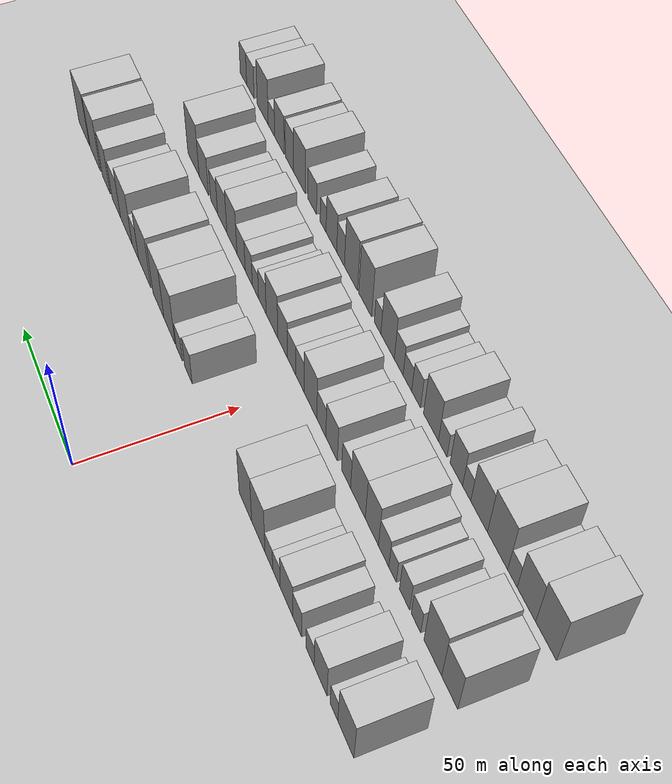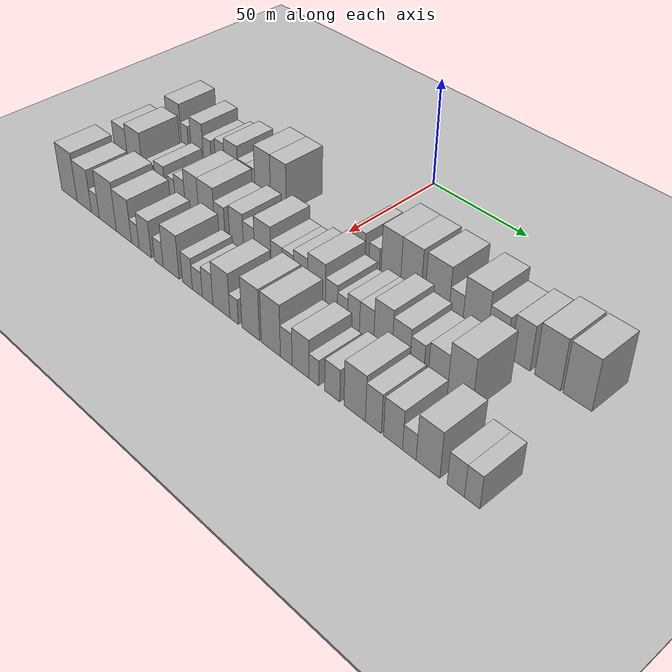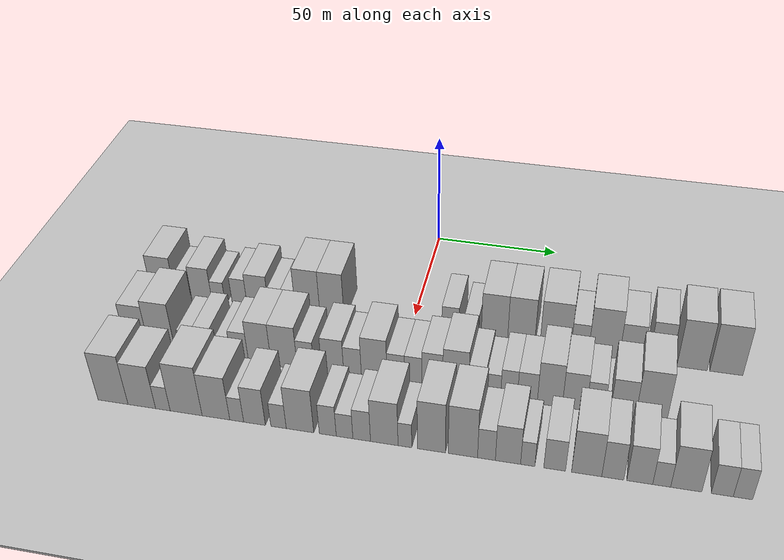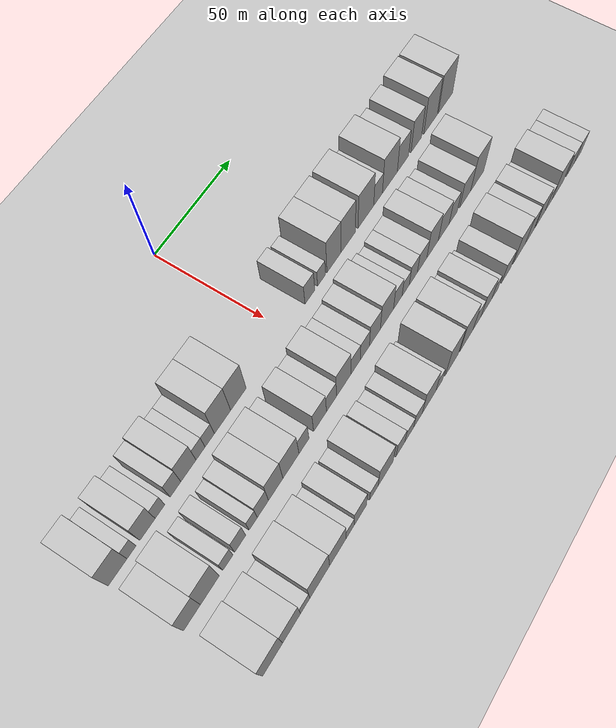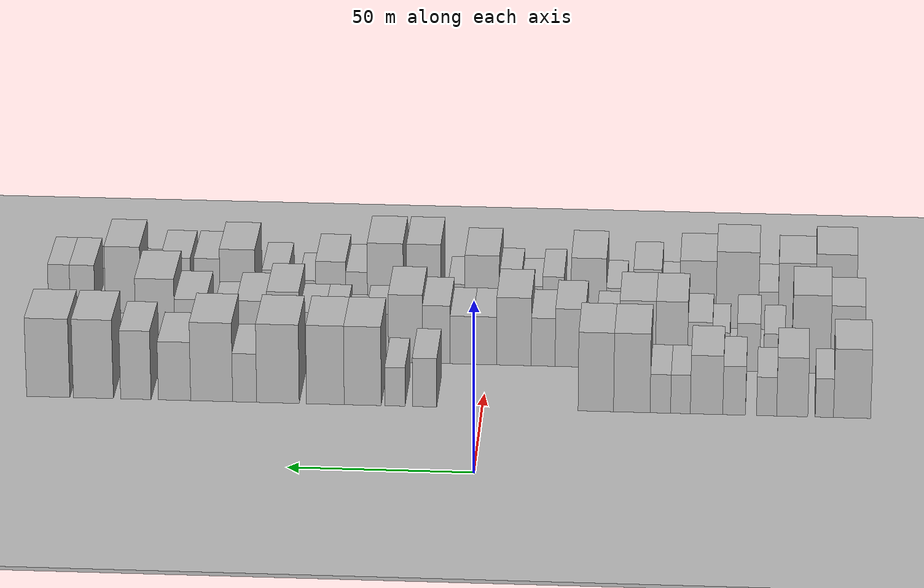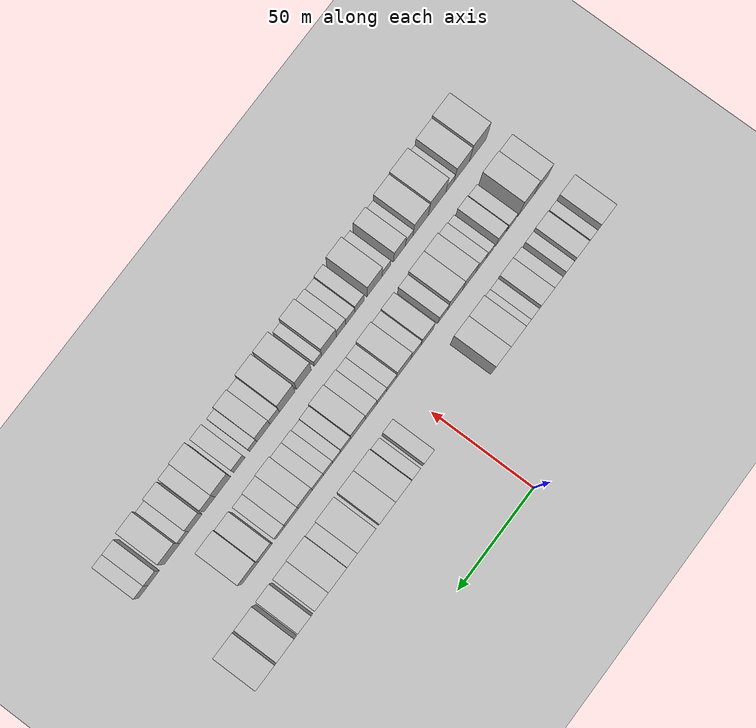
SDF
<sdf version="1.6">
 <world name="default">
  <include><name>ground_plane_1</name><uri>model://HANNAS_ground_plane</uri></include>
  <include>
   <name>ground_plane_2</name>
   <uri>model://HANNAS_ground_plane</uri>
   <pose>100 0 0  0 0 0</pose>
  </include>
  <model name="building_28">
   <static>1</static>
   <pose>50.0000 -100.8549 0 0.000000 0.000000 0.000000</pose>
   <link name="link">
    <pose>0 0 10.50 0 0 0</pose>
    <collision name="collision"><geometry><box><size>20.0000 10.1035 21.0000</size></box></geometry></collision>
    <visual name="visual">
     <cast_shadows>0</cast_shadows>
     <geometry><box><size>20.0000 10.1035 21.0000</size></box></geometry>
     <material>
      <script>
       <uri>model://HANNAS_wall/materials/scripts</uri>
       <uri>model://HANNAS_wall/materials/textures</uri>
       <name>vrc/HANNAS_wall</name>
      </script>
     </material>
    </visual>
   </link>
  </model>
  <model name="building_29">
   <static>1</static>
   <pose>50.0000 -93.3208 0 0.000000 0.000000 0.000000</pose>
   <link name="link">
    <pose>0 0 6.00 0 0 0</pose>
    <collision name="collision"><geometry><box><size>20.0000 4.9647 12.0000</size></box></geometry></collision>
    <visual name="visual">
     <cast_shadows>0</cast_shadows>
     <geometry><box><size>20.0000 4.9647 12.0000</size></box></geometry>
     <material>
      <script>
       <uri>model://HANNAS_wall/materials/scripts</uri>
       <uri>model://HANNAS_wall/materials/textures</uri>
       <name>vrc/HANNAS_wall</name>
      </script>
     </material>
    </visual>
   </link>
  </model>
  <model name="building_30">
   <static>1</static>
   <pose>50.0000 -84.5850 0 0.000000 0.000000 0.000000</pose>
   <link name="link">
    <pose>0 0 9.00 0 0 0</pose>
    <collision name="collision"><geometry><box><size>20.0000 8.5069 18.0000</size></box></geometry></collision>
    <visual name="visual">
     <cast_shadows>0</cast_shadows>
     <geometry><box><size>20.0000 8.5069 18.0000</size></box></geometry>
     <material>
      <script>
       <uri>model://HANNAS_wall/materials/scripts</uri>
       <uri>model://HANNAS_wall/materials/textures</uri>
       <name>vrc/HANNAS_wall</name>
      </script>
     </material>
    </visual>
   </link>
  </model>
  <model name="building_31">
   <static>1</static>
   <pose>50.0000 -77.5886 0 0.000000 0.000000 0.000000</pose>
   <link name="link">
    <pose>0 0 6.00 0 0 0</pose>
    <collision name="collision"><geometry><box><size>20.0000 5.4859 12.0000</size></box></geometry></collision>
    <visual name="visual">
     <cast_shadows>0</cast_shadows>
     <geometry><box><size>20.0000 5.4859 12.0000</size></box></geometry>
     <material>
      <script>
       <uri>model://HANNAS_wall/materials/scripts</uri>
       <uri>model://HANNAS_wall/materials/textures</uri>
       <name>vrc/HANNAS_wall</name>
      </script>
     </material>
    </visual>
   </link>
  </model>
  <model name="building_32">
   <static>1</static>
   <pose>50.0000 -68.7563 0 0.000000 0.000000 0.000000</pose>
   <link name="link">
    <pose>0 0 7.50 0 0 0</pose>
    <collision name="collision"><geometry><box><size>20.0000 6.1787 15.0000</size></box></geometry></collision>
    <visual name="visual">
     <cast_shadows>0</cast_shadows>
     <geometry><box><size>20.0000 6.1787 15.0000</size></box></geometry>
     <material>
      <script>
       <uri>model://HANNAS_wall/materials/scripts</uri>
       <uri>model://HANNAS_wall/materials/textures</uri>
       <name>vrc/HANNAS_wall</name>
      </script>
     </material>
    </visual>
   </link>
  </model>
  <model name="building_33">
   <static>1</static>
   <pose>50.0000 -61.2406 0 0.000000 0.000000 0.000000</pose>
   <link name="link">
    <pose>0 0 9.00 0 0 0</pose>
    <collision name="collision"><geometry><box><size>20.0000 8.8527 18.0000</size></box></geometry></collision>
    <visual name="visual">
     <cast_shadows>0</cast_shadows>
     <geometry><box><size>20.0000 8.8527 18.0000</size></box></geometry>
     <material>
      <script>
       <uri>model://HANNAS_wall/materials/scripts</uri>
       <uri>model://HANNAS_wall/materials/textures</uri>
       <name>vrc/HANNAS_wall</name>
      </script>
     </material>
    </visual>
   </link>
  </model>
  <model name="building_34">
   <static>1</static>
   <pose>50.0000 -54.1243 0 0.000000 0.000000 0.000000</pose>
   <link name="link">
    <pose>0 0 6.00 0 0 0</pose>
    <collision name="collision"><geometry><box><size>20.0000 5.3798 12.0000</size></box></geometry></collision>
    <visual name="visual">
     <cast_shadows>0</cast_shadows>
     <geometry><box><size>20.0000 5.3798 12.0000</size></box></geometry>
     <material>
      <script>
       <uri>model://HANNAS_wall/materials/scripts</uri>
       <uri>model://HANNAS_wall/materials/textures</uri>
       <name>vrc/HANNAS_wall</name>
      </script>
     </material>
    </visual>
   </link>
  </model>
  <model name="building_35">
   <static>1</static>
   <pose>50.0000 -48.6265 0 0.000000 0.000000 0.000000</pose>
   <link name="link">
    <pose>0 0 6.00 0 0 0</pose>
    <collision name="collision"><geometry><box><size>20.0000 5.6158 12.0000</size></box></geometry></collision>
    <visual name="visual">
     <cast_shadows>0</cast_shadows>
     <geometry><box><size>20.0000 5.6158 12.0000</size></box></geometry>
     <material>
      <script>
       <uri>model://HANNAS_wall/materials/scripts</uri>
       <uri>model://HANNAS_wall/materials/textures</uri>
       <name>vrc/HANNAS_wall</name>
      </script>
     </material>
    </visual>
   </link>
  </model>
  <model name="building_36">
   <static>1</static>
   <pose>50.0000 -40.8374 0 0.000000 0.000000 0.000000</pose>
   <link name="link">
    <pose>0 0 12.00 0 0 0</pose>
    <collision name="collision"><geometry><box><size>20.0000 9.9623 24.0000</size></box></geometry></collision>
    <visual name="visual">
     <cast_shadows>0</cast_shadows>
     <geometry><box><size>20.0000 9.9623 24.0000</size></box></geometry>
     <material>
      <script>
       <uri>model://HANNAS_wall/materials/scripts</uri>
       <uri>model://HANNAS_wall/materials/textures</uri>
       <name>vrc/HANNAS_wall</name>
      </script>
     </material>
    </visual>
   </link>
  </model>
  <model name="building_37">
   <static>1</static>
   <pose>50.0000 -31.0050 0 0.000000 0.000000 0.000000</pose>
   <link name="link">
    <pose>0 0 12.00 0 0 0</pose>
    <collision name="collision"><geometry><box><size>20.0000 9.7026 24.0000</size></box></geometry></collision>
    <visual name="visual">
     <cast_shadows>0</cast_shadows>
     <geometry><box><size>20.0000 9.7026 24.0000</size></box></geometry>
     <material>
      <script>
       <uri>model://HANNAS_wall/materials/scripts</uri>
       <uri>model://HANNAS_wall/materials/textures</uri>
       <name>vrc/HANNAS_wall</name>
      </script>
     </material>
    </visual>
   </link>
  </model>
  <model name="building_38">
   <static>1</static>
   <pose>50.0000 15.8936 0 0.000000 0.000000 0.000000</pose>
   <link name="link">
    <pose>0 0 7.50 0 0 0</pose>
    <collision name="collision"><geometry><box><size>20.0000 6.6982 15.0000</size></box></geometry></collision>
    <visual name="visual">
     <cast_shadows>0</cast_shadows>
     <geometry><box><size>20.0000 6.6982 15.0000</size></box></geometry>
     <material>
      <script>
       <uri>model://HANNAS_wall/materials/scripts</uri>
       <uri>model://HANNAS_wall/materials/textures</uri>
       <name>vrc/HANNAS_wall</name>
      </script>
     </material>
    </visual>
   </link>
  </model>
  <model name="building_39">
   <static>1</static>
   <pose>50.0000 24.0264 0 0.000000 0.000000 0.000000</pose>
   <link name="link">
    <pose>0 0 6.00 0 0 0</pose>
    <collision name="collision"><geometry><box><size>20.0000 5.5673 12.0000</size></box></geometry></collision>
    <visual name="visual">
     <cast_shadows>0</cast_shadows>
     <geometry><box><size>20.0000 5.5673 12.0000</size></box></geometry>
     <material>
      <script>
       <uri>model://HANNAS_wall/materials/scripts</uri>
       <uri>model://HANNAS_wall/materials/textures</uri>
       <name>vrc/HANNAS_wall</name>
      </script>
     </material>
    </visual>
   </link>
  </model>
  <model name="building_40">
   <static>1</static>
   <pose>50.0000 32.8881 0 0.000000 0.000000 0.000000</pose>
   <link name="link">
    <pose>0 0 12.00 0 0 0</pose>
    <collision name="collision"><geometry><box><size>20.0000 10.1561 24.0000</size></box></geometry></collision>
    <visual name="visual">
     <cast_shadows>0</cast_shadows>
     <geometry><box><size>20.0000 10.1561 24.0000</size></box></geometry>
     <material>
      <script>
       <uri>model://HANNAS_wall/materials/scripts</uri>
       <uri>model://HANNAS_wall/materials/textures</uri>
       <name>vrc/HANNAS_wall</name>
      </script>
     </material>
    </visual>
   </link>
  </model>
  <model name="building_41">
   <static>1</static>
   <pose>50.0000 43.1462 0 0.000000 0.000000 0.000000</pose>
   <link name="link">
    <pose>0 0 12.00 0 0 0</pose>
    <collision name="collision"><geometry><box><size>20.0000 10.3601 24.0000</size></box></geometry></collision>
    <visual name="visual">
     <cast_shadows>0</cast_shadows>
     <geometry><box><size>20.0000 10.3601 24.0000</size></box></geometry>
     <material>
      <script>
       <uri>model://HANNAS_wall/materials/scripts</uri>
       <uri>model://HANNAS_wall/materials/textures</uri>
       <name>vrc/HANNAS_wall</name>
      </script>
     </material>
    </visual>
   </link>
  </model>
  <model name="building_42">
   <static>1</static>
   <pose>50.0000 56.1803 0 0.000000 0.000000 0.000000</pose>
   <link name="link">
    <pose>0 0 12.00 0 0 0</pose>
    <collision name="collision"><geometry><box><size>20.0000 11.7080 24.0000</size></box></geometry></collision>
    <visual name="visual">
     <cast_shadows>0</cast_shadows>
     <geometry><box><size>20.0000 11.7080 24.0000</size></box></geometry>
     <material>
      <script>
       <uri>model://HANNAS_wall/materials/scripts</uri>
       <uri>model://HANNAS_wall/materials/textures</uri>
       <name>vrc/HANNAS_wall</name>
      </script>
     </material>
    </visual>
   </link>
  </model>
  <model name="building_43">
   <static>1</static>
   <pose>50.0000 65.3462 0 0.000000 0.000000 0.000000</pose>
   <link name="link">
    <pose>0 0 7.50 0 0 0</pose>
    <collision name="collision"><geometry><box><size>20.0000 6.6238 15.0000</size></box></geometry></collision>
    <visual name="visual">
     <cast_shadows>0</cast_shadows>
     <geometry><box><size>20.0000 6.6238 15.0000</size></box></geometry>
     <material>
      <script>
       <uri>model://HANNAS_wall/materials/scripts</uri>
       <uri>model://HANNAS_wall/materials/textures</uri>
       <name>vrc/HANNAS_wall</name>
      </script>
     </material>
    </visual>
   </link>
  </model>
  <model name="building_44">
   <static>1</static>
   <pose>50.0000 74.4359 0 0.000000 0.000000 0.000000</pose>
   <link name="link">
    <pose>0 0 12.00 0 0 0</pose>
    <collision name="collision"><geometry><box><size>20.0000 11.5555 24.0000</size></box></geometry></collision>
    <visual name="visual">
     <cast_shadows>0</cast_shadows>
     <geometry><box><size>20.0000 11.5555 24.0000</size></box></geometry>
     <material>
      <script>
       <uri>model://HANNAS_wall/materials/scripts</uri>
       <uri>model://HANNAS_wall/materials/textures</uri>
       <name>vrc/HANNAS_wall</name>
      </script>
     </material>
    </visual>
   </link>
  </model>
  <model name="building_45">
   <static>1</static>
   <pose>50.0000 84.6736 0 0.000000 0.000000 0.000000</pose>
   <link name="link">
    <pose>0 0 9.00 0 0 0</pose>
    <collision name="collision"><geometry><box><size>20.0000 8.9198 18.0000</size></box></geometry></collision>
    <visual name="visual">
     <cast_shadows>0</cast_shadows>
     <geometry><box><size>20.0000 8.9198 18.0000</size></box></geometry>
     <material>
      <script>
       <uri>model://HANNAS_wall/materials/scripts</uri>
       <uri>model://HANNAS_wall/materials/textures</uri>
       <name>vrc/HANNAS_wall</name>
      </script>
     </material>
    </visual>
   </link>
  </model>
  <model name="building_46">
   <static>1</static>
   <pose>50.0000 95.3387 0 0.000000 0.000000 0.000000</pose>
   <link name="link">
    <pose>0 0 10.50 0 0 0</pose>
    <collision name="collision"><geometry><box><size>20.0000 8.4104 21.0000</size></box></geometry></collision>
    <visual name="visual">
     <cast_shadows>0</cast_shadows>
     <geometry><box><size>20.0000 8.4104 21.0000</size></box></geometry>
     <material>
      <script>
       <uri>model://HANNAS_wall/materials/scripts</uri>
       <uri>model://HANNAS_wall/materials/textures</uri>
       <name>vrc/HANNAS_wall</name>
      </script>
     </material>
    </visual>
   </link>
  </model>
  <model name="building_47">
   <static>1</static>
   <pose>50.0000 107.0612 0 0.000000 0.000000 0.000000</pose>
   <link name="link">
    <pose>0 0 12.00 0 0 0</pose>
    <collision name="collision"><geometry><box><size>20.0000 11.0347 24.0000</size></box></geometry></collision>
    <visual name="visual">
     <cast_shadows>0</cast_shadows>
     <geometry><box><size>20.0000 11.0347 24.0000</size></box></geometry>
     <material>
      <script>
       <uri>model://HANNAS_wall/materials/scripts</uri>
       <uri>model://HANNAS_wall/materials/textures</uri>
       <name>vrc/HANNAS_wall</name>
      </script>
     </material>
    </visual>
   </link>
  </model>
  <model name="building_48">
   <static>1</static>
   <pose>50.0000 119.5464 0 0.000000 0.000000 0.000000</pose>
   <link name="link">
    <pose>0 0 12.00 0 0 0</pose>
    <collision name="collision"><geometry><box><size>20.0000 11.9357 24.0000</size></box></geometry></collision>
    <visual name="visual">
     <cast_shadows>0</cast_shadows>
     <geometry><box><size>20.0000 11.9357 24.0000</size></box></geometry>
     <material>
      <script>
       <uri>model://HANNAS_wall/materials/scripts</uri>
       <uri>model://HANNAS_wall/materials/textures</uri>
       <name>vrc/HANNAS_wall</name>
      </script>
     </material>
    </visual>
   </link>
  </model>
  <model name="building_97">
   <static>1</static>
   <pose>79.0000 -99.5963 0 0.000000 0.000000 0.000000</pose>
   <link name="link">
    <pose>0 0 10.50 0 0 0</pose>
    <collision name="collision"><geometry><box><size>20.0000 9.3835 21.0000</size></box></geometry></collision>
    <visual name="visual">
     <cast_shadows>0</cast_shadows>
     <geometry><box><size>20.0000 9.3835 21.0000</size></box></geometry>
     <material>
      <script>
       <uri>model://HANNAS_wall/materials/scripts</uri>
       <uri>model://HANNAS_wall/materials/textures</uri>
       <name>vrc/HANNAS_wall</name>
      </script>
     </material>
    </visual>
   </link>
  </model>
  <model name="building_98">
   <static>1</static>
   <pose>79.0000 -89.5971 0 0.000000 0.000000 0.000000</pose>
   <link name="link">
    <pose>0 0 12.00 0 0 0</pose>
    <collision name="collision"><geometry><box><size>20.0000 10.6150 24.0000</size></box></geometry></collision>
    <visual name="visual">
     <cast_shadows>0</cast_shadows>
     <geometry><box><size>20.0000 10.6150 24.0000</size></box></geometry>
     <material>
      <script>
       <uri>model://HANNAS_wall/materials/scripts</uri>
       <uri>model://HANNAS_wall/materials/textures</uri>
       <name>vrc/HANNAS_wall</name>
      </script>
     </material>
    </visual>
   </link>
  </model>
  <model name="building_99">
   <static>1</static>
   <pose>79.0000 -79.3667 0 0.000000 0.000000 0.000000</pose>
   <link name="link">
    <pose>0 0 6.00 0 0 0</pose>
    <collision name="collision"><geometry><box><size>20.0000 5.8457 12.0000</size></box></geometry></collision>
    <visual name="visual">
     <cast_shadows>0</cast_shadows>
     <geometry><box><size>20.0000 5.8457 12.0000</size></box></geometry>
     <material>
      <script>
       <uri>model://HANNAS_wall/materials/scripts</uri>
       <uri>model://HANNAS_wall/materials/textures</uri>
       <name>vrc/HANNAS_wall</name>
      </script>
     </material>
    </visual>
   </link>
  </model>
  <model name="building_100">
   <static>1</static>
   <pose>79.0000 -72.2043 0 0.000000 0.000000 0.000000</pose>
   <link name="link">
    <pose>0 0 7.50 0 0 0</pose>
    <collision name="collision"><geometry><box><size>20.0000 6.4791 15.0000</size></box></geometry></collision>
    <visual name="visual">
     <cast_shadows>0</cast_shadows>
     <geometry><box><size>20.0000 6.4791 15.0000</size></box></geometry>
     <material>
      <script>
       <uri>model://HANNAS_wall/materials/scripts</uri>
       <uri>model://HANNAS_wall/materials/textures</uri>
       <name>vrc/HANNAS_wall</name>
      </script>
     </material>
    </visual>
   </link>
  </model>
  <model name="building_101">
   <static>1</static>
   <pose>79.0000 -64.5507 0 0.000000 0.000000 0.000000</pose>
   <link name="link">
    <pose>0 0 6.00 0 0 0</pose>
    <collision name="collision"><geometry><box><size>20.0000 4.8282 12.0000</size></box></geometry></collision>
    <visual name="visual">
     <cast_shadows>0</cast_shadows>
     <geometry><box><size>20.0000 4.8282 12.0000</size></box></geometry>
     <material>
      <script>
       <uri>model://HANNAS_wall/materials/scripts</uri>
       <uri>model://HANNAS_wall/materials/textures</uri>
       <name>vrc/HANNAS_wall</name>
      </script>
     </material>
    </visual>
   </link>
  </model>
  <model name="building_102">
   <static>1</static>
   <pose>79.0000 -58.7323 0 0.000000 0.000000 0.000000</pose>
   <link name="link">
    <pose>0 0 7.50 0 0 0</pose>
    <collision name="collision"><geometry><box><size>20.0000 6.8086 15.0000</size></box></geometry></collision>
    <visual name="visual">
     <cast_shadows>0</cast_shadows>
     <geometry><box><size>20.0000 6.8086 15.0000</size></box></geometry>
     <material>
      <script>
       <uri>model://HANNAS_wall/materials/scripts</uri>
       <uri>model://HANNAS_wall/materials/textures</uri>
       <name>vrc/HANNAS_wall</name>
      </script>
     </material>
    </visual>
   </link>
  </model>
  <model name="building_103">
   <static>1</static>
   <pose>79.0000 -50.8927 0 0.000000 0.000000 0.000000</pose>
   <link name="link">
    <pose>0 0 10.50 0 0 0</pose>
    <collision name="collision"><geometry><box><size>20.0000 8.8706 21.0000</size></box></geometry></collision>
    <visual name="visual">
     <cast_shadows>0</cast_shadows>
     <geometry><box><size>20.0000 8.8706 21.0000</size></box></geometry>
     <material>
      <script>
       <uri>model://HANNAS_wall/materials/scripts</uri>
       <uri>model://HANNAS_wall/materials/textures</uri>
       <name>vrc/HANNAS_wall</name>
      </script>
     </material>
    </visual>
   </link>
  </model>
  <model name="building_104">
   <static>1</static>
   <pose>79.0000 -41.4099 0 0.000000 0.000000 0.000000</pose>
   <link name="link">
    <pose>0 0 10.50 0 0 0</pose>
    <collision name="collision"><geometry><box><size>20.0000 10.0950 21.0000</size></box></geometry></collision>
    <visual name="visual">
     <cast_shadows>0</cast_shadows>
     <geometry><box><size>20.0000 10.0950 21.0000</size></box></geometry>
     <material>
      <script>
       <uri>model://HANNAS_wall/materials/scripts</uri>
       <uri>model://HANNAS_wall/materials/textures</uri>
       <name>vrc/HANNAS_wall</name>
      </script>
     </material>
    </visual>
   </link>
  </model>
  <model name="building_105">
   <static>1</static>
   <pose>79.0000 -33.1680 0 0.000000 0.000000 0.000000</pose>
   <link name="link">
    <pose>0 0 7.50 0 0 0</pose>
    <collision name="collision"><geometry><box><size>20.0000 6.3888 15.0000</size></box></geometry></collision>
    <visual name="visual">
     <cast_shadows>0</cast_shadows>
     <geometry><box><size>20.0000 6.3888 15.0000</size></box></geometry>
     <material>
      <script>
       <uri>model://HANNAS_wall/materials/scripts</uri>
       <uri>model://HANNAS_wall/materials/textures</uri>
       <name>vrc/HANNAS_wall</name>
      </script>
     </material>
    </visual>
   </link>
  </model>
  <model name="building_106">
   <static>1</static>
   <pose>79.0000 -22.7790 0 0.000000 0.000000 0.000000</pose>
   <link name="link">
    <pose>0 0 9.00 0 0 0</pose>
    <collision name="collision"><geometry><box><size>20.0000 8.3892 18.0000</size></box></geometry></collision>
    <visual name="visual">
     <cast_shadows>0</cast_shadows>
     <geometry><box><size>20.0000 8.3892 18.0000</size></box></geometry>
     <material>
      <script>
       <uri>model://HANNAS_wall/materials/scripts</uri>
       <uri>model://HANNAS_wall/materials/textures</uri>
       <name>vrc/HANNAS_wall</name>
      </script>
     </material>
    </visual>
   </link>
  </model>
  <model name="building_107">
   <static>1</static>
   <pose>79.0000 -15.2485 0 0.000000 0.000000 0.000000</pose>
   <link name="link">
    <pose>0 0 7.50 0 0 0</pose>
    <collision name="collision"><geometry><box><size>20.0000 6.6717 15.0000</size></box></geometry></collision>
    <visual name="visual">
     <cast_shadows>0</cast_shadows>
     <geometry><box><size>20.0000 6.6717 15.0000</size></box></geometry>
     <material>
      <script>
       <uri>model://HANNAS_wall/materials/scripts</uri>
       <uri>model://HANNAS_wall/materials/textures</uri>
       <name>vrc/HANNAS_wall</name>
      </script>
     </material>
    </visual>
   </link>
  </model>
  <model name="building_108">
   <static>1</static>
   <pose>79.0000 -7.0770 0 0.000000 0.000000 0.000000</pose>
   <link name="link">
    <pose>0 0 10.50 0 0 0</pose>
    <collision name="collision"><geometry><box><size>20.0000 9.6714 21.0000</size></box></geometry></collision>
    <visual name="visual">
     <cast_shadows>0</cast_shadows>
     <geometry><box><size>20.0000 9.6714 21.0000</size></box></geometry>
     <material>
      <script>
       <uri>model://HANNAS_wall/materials/scripts</uri>
       <uri>model://HANNAS_wall/materials/textures</uri>
       <name>vrc/HANNAS_wall</name>
      </script>
     </material>
    </visual>
   </link>
  </model>
  <model name="building_109">
   <static>1</static>
   <pose>79.0000 1.0165 0 0.000000 0.000000 0.000000</pose>
   <link name="link">
    <pose>0 0 7.50 0 0 0</pose>
    <collision name="collision"><geometry><box><size>20.0000 6.5156 15.0000</size></box></geometry></collision>
    <visual name="visual">
     <cast_shadows>0</cast_shadows>
     <geometry><box><size>20.0000 6.5156 15.0000</size></box></geometry>
     <material>
      <script>
       <uri>model://HANNAS_wall/materials/scripts</uri>
       <uri>model://HANNAS_wall/materials/textures</uri>
       <name>vrc/HANNAS_wall</name>
      </script>
     </material>
    </visual>
   </link>
  </model>
  <model name="building_110">
   <static>1</static>
   <pose>79.0000 7.4887 0 0.000000 0.000000 0.000000</pose>
   <link name="link">
    <pose>0 0 7.50 0 0 0</pose>
    <collision name="collision"><geometry><box><size>20.0000 6.4288 15.0000</size></box></geometry></collision>
    <visual name="visual">
     <cast_shadows>0</cast_shadows>
     <geometry><box><size>20.0000 6.4288 15.0000</size></box></geometry>
     <material>
      <script>
       <uri>model://HANNAS_wall/materials/scripts</uri>
       <uri>model://HANNAS_wall/materials/textures</uri>
       <name>vrc/HANNAS_wall</name>
      </script>
     </material>
    </visual>
   </link>
  </model>
  <model name="building_111">
   <static>1</static>
   <pose>79.0000 14.5579 0 0.000000 0.000000 0.000000</pose>
   <link name="link">
    <pose>0 0 9.00 0 0 0</pose>
    <collision name="collision"><geometry><box><size>20.0000 7.7095 18.0000</size></box></geometry></collision>
    <visual name="visual">
     <cast_shadows>0</cast_shadows>
     <geometry><box><size>20.0000 7.7095 18.0000</size></box></geometry>
     <material>
      <script>
       <uri>model://HANNAS_wall/materials/scripts</uri>
       <uri>model://HANNAS_wall/materials/textures</uri>
       <name>vrc/HANNAS_wall</name>
      </script>
     </material>
    </visual>
   </link>
  </model>
  <model name="building_112">
   <static>1</static>
   <pose>79.0000 23.1753 0 0.000000 0.000000 0.000000</pose>
   <link name="link">
    <pose>0 0 10.50 0 0 0</pose>
    <collision name="collision"><geometry><box><size>20.0000 9.5252 21.0000</size></box></geometry></collision>
    <visual name="visual">
     <cast_shadows>0</cast_shadows>
     <geometry><box><size>20.0000 9.5252 21.0000</size></box></geometry>
     <material>
      <script>
       <uri>model://HANNAS_wall/materials/scripts</uri>
       <uri>model://HANNAS_wall/materials/textures</uri>
       <name>vrc/HANNAS_wall</name>
      </script>
     </material>
    </visual>
   </link>
  </model>
  <model name="building_113">
   <static>1</static>
   <pose>79.0000 31.0862 0 0.000000 0.000000 0.000000</pose>
   <link name="link">
    <pose>0 0 7.50 0 0 0</pose>
    <collision name="collision"><geometry><box><size>20.0000 6.2967 15.0000</size></box></geometry></collision>
    <visual name="visual">
     <cast_shadows>0</cast_shadows>
     <geometry><box><size>20.0000 6.2967 15.0000</size></box></geometry>
     <material>
      <script>
       <uri>model://HANNAS_wall/materials/scripts</uri>
       <uri>model://HANNAS_wall/materials/textures</uri>
       <name>vrc/HANNAS_wall</name>
      </script>
     </material>
    </visual>
   </link>
  </model>
  <model name="building_114">
   <static>1</static>
   <pose>79.0000 36.9077 0 0.000000 0.000000 0.000000</pose>
   <link name="link">
    <pose>0 0 6.00 0 0 0</pose>
    <collision name="collision"><geometry><box><size>20.0000 5.3462 12.0000</size></box></geometry></collision>
    <visual name="visual">
     <cast_shadows>0</cast_shadows>
     <geometry><box><size>20.0000 5.3462 12.0000</size></box></geometry>
     <material>
      <script>
       <uri>model://HANNAS_wall/materials/scripts</uri>
       <uri>model://HANNAS_wall/materials/textures</uri>
       <name>vrc/HANNAS_wall</name>
      </script>
     </material>
    </visual>
   </link>
  </model>
  <model name="building_115">
   <static>1</static>
   <pose>79.0000 42.6156 0 0.000000 0.000000 0.000000</pose>
   <link name="link">
    <pose>0 0 7.50 0 0 0</pose>
    <collision name="collision"><geometry><box><size>20.0000 6.0697 15.0000</size></box></geometry></collision>
    <visual name="visual">
     <cast_shadows>0</cast_shadows>
     <geometry><box><size>20.0000 6.0697 15.0000</size></box></geometry>
     <material>
      <script>
       <uri>model://HANNAS_wall/materials/scripts</uri>
       <uri>model://HANNAS_wall/materials/textures</uri>
       <name>vrc/HANNAS_wall</name>
      </script>
     </material>
    </visual>
   </link>
  </model>
  <model name="building_116">
   <static>1</static>
   <pose>79.0000 49.2344 0 0.000000 0.000000 0.000000</pose>
   <link name="link">
    <pose>0 0 7.50 0 0 0</pose>
    <collision name="collision"><geometry><box><size>20.0000 7.1678 15.0000</size></box></geometry></collision>
    <visual name="visual">
     <cast_shadows>0</cast_shadows>
     <geometry><box><size>20.0000 7.1678 15.0000</size></box></geometry>
     <material>
      <script>
       <uri>model://HANNAS_wall/materials/scripts</uri>
       <uri>model://HANNAS_wall/materials/textures</uri>
       <name>vrc/HANNAS_wall</name>
      </script>
     </material>
    </visual>
   </link>
  </model>
  <model name="building_117">
   <static>1</static>
   <pose>79.0000 57.3023 0 0.000000 0.000000 0.000000</pose>
   <link name="link">
    <pose>0 0 10.50 0 0 0</pose>
    <collision name="collision"><geometry><box><size>20.0000 8.9681 21.0000</size></box></geometry></collision>
    <visual name="visual">
     <cast_shadows>0</cast_shadows>
     <geometry><box><size>20.0000 8.9681 21.0000</size></box></geometry>
     <material>
      <script>
       <uri>model://HANNAS_wall/materials/scripts</uri>
       <uri>model://HANNAS_wall/materials/textures</uri>
       <name>vrc/HANNAS_wall</name>
      </script>
     </material>
    </visual>
   </link>
  </model>
  <model name="building_118">
   <static>1</static>
   <pose>79.0000 66.0440 0 0.000000 0.000000 0.000000</pose>
   <link name="link">
    <pose>0 0 9.00 0 0 0</pose>
    <collision name="collision"><geometry><box><size>20.0000 8.5152 18.0000</size></box></geometry></collision>
    <visual name="visual">
     <cast_shadows>0</cast_shadows>
     <geometry><box><size>20.0000 8.5152 18.0000</size></box></geometry>
     <material>
      <script>
       <uri>model://HANNAS_wall/materials/scripts</uri>
       <uri>model://HANNAS_wall/materials/textures</uri>
       <name>vrc/HANNAS_wall</name>
      </script>
     </material>
    </visual>
   </link>
  </model>
  <model name="building_119">
   <static>1</static>
   <pose>79.0000 73.5313 0 0.000000 0.000000 0.000000</pose>
   <link name="link">
    <pose>0 0 7.50 0 0 0</pose>
    <collision name="collision"><geometry><box><size>20.0000 6.4594 15.0000</size></box></geometry></collision>
    <visual name="visual">
     <cast_shadows>0</cast_shadows>
     <geometry><box><size>20.0000 6.4594 15.0000</size></box></geometry>
     <material>
      <script>
       <uri>model://HANNAS_wall/materials/scripts</uri>
       <uri>model://HANNAS_wall/materials/textures</uri>
       <name>vrc/HANNAS_wall</name>
      </script>
     </material>
    </visual>
   </link>
  </model>
  <model name="building_120">
   <static>1</static>
   <pose>79.0000 83.2062 0 0.000000 0.000000 0.000000</pose>
   <link name="link">
    <pose>0 0 9.00 0 0 0</pose>
    <collision name="collision"><geometry><box><size>20.0000 8.8904 18.0000</size></box></geometry></collision>
    <visual name="visual">
     <cast_shadows>0</cast_shadows>
     <geometry><box><size>20.0000 8.8904 18.0000</size></box></geometry>
     <material>
      <script>
       <uri>model://HANNAS_wall/materials/scripts</uri>
       <uri>model://HANNAS_wall/materials/textures</uri>
       <name>vrc/HANNAS_wall</name>
      </script>
     </material>
    </visual>
   </link>
  </model>
  <model name="building_121">
   <static>1</static>
   <pose>79.0000 93.1075 0 0.000000 0.000000 0.000000</pose>
   <link name="link">
    <pose>0 0 12.00 0 0 0</pose>
    <collision name="collision"><geometry><box><size>20.0000 10.9123 24.0000</size></box></geometry></collision>
    <visual name="visual">
     <cast_shadows>0</cast_shadows>
     <geometry><box><size>20.0000 10.9123 24.0000</size></box></geometry>
     <material>
      <script>
       <uri>model://HANNAS_wall/materials/scripts</uri>
       <uri>model://HANNAS_wall/materials/textures</uri>
       <name>vrc/HANNAS_wall</name>
      </script>
     </material>
    </visual>
   </link>
  </model>
  <model name="building_169">
   <static>1</static>
   <pose>108.0000 -96.4127 0 0.000000 0.000000 0.000000</pose>
   <link name="link">
    <pose>0 0 12.00 0 0 0</pose>
    <collision name="collision"><geometry><box><size>20.0000 11.4889 24.0000</size></box></geometry></collision>
    <visual name="visual">
     <cast_shadows>0</cast_shadows>
     <geometry><box><size>20.0000 11.4889 24.0000</size></box></geometry>
     <material>
      <script>
       <uri>model://HANNAS_wall/materials/scripts</uri>
       <uri>model://HANNAS_wall/materials/textures</uri>
       <name>vrc/HANNAS_wall</name>
      </script>
     </material>
    </visual>
   </link>
  </model>
  <model name="building_170">
   <static>1</static>
   <pose>108.0000 -85.4387 0 0.000000 0.000000 0.000000</pose>
   <link name="link">
    <pose>0 0 10.50 0 0 0</pose>
    <collision name="collision"><geometry><box><size>20.0000 10.4591 21.0000</size></box></geometry></collision>
    <visual name="visual">
     <cast_shadows>0</cast_shadows>
     <geometry><box><size>20.0000 10.4591 21.0000</size></box></geometry>
     <material>
      <script>
       <uri>model://HANNAS_wall/materials/scripts</uri>
       <uri>model://HANNAS_wall/materials/textures</uri>
       <name>vrc/HANNAS_wall</name>
      </script>
     </material>
    </visual>
   </link>
  </model>
  <model name="building_171">
   <static>1</static>
   <pose>108.0000 -77.4448 0 0.000000 0.000000 0.000000</pose>
   <link name="link">
    <pose>0 0 6.00 0 0 0</pose>
    <collision name="collision"><geometry><box><size>20.0000 5.5287 12.0000</size></box></geometry></collision>
    <visual name="visual">
     <cast_shadows>0</cast_shadows>
     <geometry><box><size>20.0000 5.5287 12.0000</size></box></geometry>
     <material>
      <script>
       <uri>model://HANNAS_wall/materials/scripts</uri>
       <uri>model://HANNAS_wall/materials/textures</uri>
       <name>vrc/HANNAS_wall</name>
      </script>
     </material>
    </visual>
   </link>
  </model>
  <model name="building_172">
   <static>1</static>
   <pose>108.0000 -68.6865 0 0.000000 0.000000 0.000000</pose>
   <link name="link">
    <pose>0 0 12.00 0 0 0</pose>
    <collision name="collision"><geometry><box><size>20.0000 11.9879 24.0000</size></box></geometry></collision>
    <visual name="visual">
     <cast_shadows>0</cast_shadows>
     <geometry><box><size>20.0000 11.9879 24.0000</size></box></geometry>
     <material>
      <script>
       <uri>model://HANNAS_wall/materials/scripts</uri>
       <uri>model://HANNAS_wall/materials/textures</uri>
       <name>vrc/HANNAS_wall</name>
      </script>
     </material>
    </visual>
   </link>
  </model>
  <model name="building_173">
   <static>1</static>
   <pose>108.0000 -57.5552 0 0.000000 0.000000 0.000000</pose>
   <link name="link">
    <pose>0 0 10.50 0 0 0</pose>
    <collision name="collision"><geometry><box><size>20.0000 10.2746 21.0000</size></box></geometry></collision>
    <visual name="visual">
     <cast_shadows>0</cast_shadows>
     <geometry><box><size>20.0000 10.2746 21.0000</size></box></geometry>
     <material>
      <script>
       <uri>model://HANNAS_wall/materials/scripts</uri>
       <uri>model://HANNAS_wall/materials/textures</uri>
       <name>vrc/HANNAS_wall</name>
      </script>
     </material>
    </visual>
   </link>
  </model>
  <model name="building_174">
   <static>1</static>
   <pose>108.0000 -49.8562 0 0.000000 0.000000 0.000000</pose>
   <link name="link">
    <pose>0 0 6.00 0 0 0</pose>
    <collision name="collision"><geometry><box><size>20.0000 5.1233 12.0000</size></box></geometry></collision>
    <visual name="visual">
     <cast_shadows>0</cast_shadows>
     <geometry><box><size>20.0000 5.1233 12.0000</size></box></geometry>
     <material>
      <script>
       <uri>model://HANNAS_wall/materials/scripts</uri>
       <uri>model://HANNAS_wall/materials/textures</uri>
       <name>vrc/HANNAS_wall</name>
      </script>
     </material>
    </visual>
   </link>
  </model>
  <model name="building_175">
   <static>1</static>
   <pose>108.0000 -43.3078 0 0.000000 0.000000 0.000000</pose>
   <link name="link">
    <pose>0 0 9.00 0 0 0</pose>
    <collision name="collision"><geometry><box><size>20.0000 7.9735 18.0000</size></box></geometry></collision>
    <visual name="visual">
     <cast_shadows>0</cast_shadows>
     <geometry><box><size>20.0000 7.9735 18.0000</size></box></geometry>
     <material>
      <script>
       <uri>model://HANNAS_wall/materials/scripts</uri>
       <uri>model://HANNAS_wall/materials/textures</uri>
       <name>vrc/HANNAS_wall</name>
      </script>
     </material>
    </visual>
   </link>
  </model>
  <model name="building_176">
   <static>1</static>
   <pose>108.0000 -34.5117 0 0.000000 0.000000 0.000000</pose>
   <link name="link">
    <pose>0 0 6.00 0 0 0</pose>
    <collision name="collision"><geometry><box><size>20.0000 5.6186 12.0000</size></box></geometry></collision>
    <visual name="visual">
     <cast_shadows>0</cast_shadows>
     <geometry><box><size>20.0000 5.6186 12.0000</size></box></geometry>
     <material>
      <script>
       <uri>model://HANNAS_wall/materials/scripts</uri>
       <uri>model://HANNAS_wall/materials/textures</uri>
       <name>vrc/HANNAS_wall</name>
      </script>
     </material>
    </visual>
   </link>
  </model>
  <model name="building_177">
   <static>1</static>
   <pose>108.0000 -26.7103 0 0.000000 0.000000 0.000000</pose>
   <link name="link">
    <pose>0 0 10.50 0 0 0</pose>
    <collision name="collision"><geometry><box><size>20.0000 9.9841 21.0000</size></box></geometry></collision>
    <visual name="visual">
     <cast_shadows>0</cast_shadows>
     <geometry><box><size>20.0000 9.9841 21.0000</size></box></geometry>
     <material>
      <script>
       <uri>model://HANNAS_wall/materials/scripts</uri>
       <uri>model://HANNAS_wall/materials/textures</uri>
       <name>vrc/HANNAS_wall</name>
      </script>
     </material>
    </visual>
   </link>
  </model>
  <model name="building_178">
   <static>1</static>
   <pose>108.0000 -16.6829 0 0.000000 0.000000 0.000000</pose>
   <link name="link">
    <pose>0 0 7.50 0 0 0</pose>
    <collision name="collision"><geometry><box><size>20.0000 6.0708 15.0000</size></box></geometry></collision>
    <visual name="visual">
     <cast_shadows>0</cast_shadows>
     <geometry><box><size>20.0000 6.0708 15.0000</size></box></geometry>
     <material>
      <script>
       <uri>model://HANNAS_wall/materials/scripts</uri>
       <uri>model://HANNAS_wall/materials/textures</uri>
       <name>vrc/HANNAS_wall</name>
      </script>
     </material>
    </visual>
   </link>
  </model>
  <model name="building_179">
   <static>1</static>
   <pose>108.0000 -10.6674 0 0.000000 0.000000 0.000000</pose>
   <link name="link">
    <pose>0 0 6.00 0 0 0</pose>
    <collision name="collision"><geometry><box><size>20.0000 5.9601 12.0000</size></box></geometry></collision>
    <visual name="visual">
     <cast_shadows>0</cast_shadows>
     <geometry><box><size>20.0000 5.9601 12.0000</size></box></geometry>
     <material>
      <script>
       <uri>model://HANNAS_wall/materials/scripts</uri>
       <uri>model://HANNAS_wall/materials/textures</uri>
       <name>vrc/HANNAS_wall</name>
      </script>
     </material>
    </visual>
   </link>
  </model>
  <model name="building_180">
   <static>1</static>
   <pose>108.0000 -4.5582 0 0.000000 0.000000 0.000000</pose>
   <link name="link">
    <pose>0 0 7.50 0 0 0</pose>
    <collision name="collision"><geometry><box><size>20.0000 6.2583 15.0000</size></box></geometry></collision>
    <visual name="visual">
     <cast_shadows>0</cast_shadows>
     <geometry><box><size>20.0000 6.2583 15.0000</size></box></geometry>
     <material>
      <script>
       <uri>model://HANNAS_wall/materials/scripts</uri>
       <uri>model://HANNAS_wall/materials/textures</uri>
       <name>vrc/HANNAS_wall</name>
      </script>
     </material>
    </visual>
   </link>
  </model>
  <model name="building_181">
   <static>1</static>
   <pose>108.0000 3.4399 0 0.000000 0.000000 0.000000</pose>
   <link name="link">
    <pose>0 0 10.50 0 0 0</pose>
    <collision name="collision"><geometry><box><size>20.0000 9.7378 21.0000</size></box></geometry></collision>
    <visual name="visual">
     <cast_shadows>0</cast_shadows>
     <geometry><box><size>20.0000 9.7378 21.0000</size></box></geometry>
     <material>
      <script>
       <uri>model://HANNAS_wall/materials/scripts</uri>
       <uri>model://HANNAS_wall/materials/textures</uri>
       <name>vrc/HANNAS_wall</name>
      </script>
     </material>
    </visual>
   </link>
  </model>
  <model name="building_182">
   <static>1</static>
   <pose>108.0000 10.7193 0 0.000000 0.000000 0.000000</pose>
   <link name="link">
    <pose>0 0 6.00 0 0 0</pose>
    <collision name="collision"><geometry><box><size>20.0000 4.8211 12.0000</size></box></geometry></collision>
    <visual name="visual">
     <cast_shadows>0</cast_shadows>
     <geometry><box><size>20.0000 4.8211 12.0000</size></box></geometry>
     <material>
      <script>
       <uri>model://HANNAS_wall/materials/scripts</uri>
       <uri>model://HANNAS_wall/materials/textures</uri>
       <name>vrc/HANNAS_wall</name>
      </script>
     </material>
    </visual>
   </link>
  </model>
  <model name="building_183">
   <static>1</static>
   <pose>108.0000 19.9782 0 0.000000 0.000000 0.000000</pose>
   <link name="link">
    <pose>0 0 12.00 0 0 0</pose>
    <collision name="collision"><geometry><box><size>20.0000 9.6968 24.0000</size></box></geometry></collision>
    <visual name="visual">
     <cast_shadows>0</cast_shadows>
     <geometry><box><size>20.0000 9.6968 24.0000</size></box></geometry>
     <material>
      <script>
       <uri>model://HANNAS_wall/materials/scripts</uri>
       <uri>model://HANNAS_wall/materials/textures</uri>
       <name>vrc/HANNAS_wall</name>
      </script>
     </material>
    </visual>
   </link>
  </model>
  <model name="building_184">
   <static>1</static>
   <pose>108.0000 30.8953 0 0.000000 0.000000 0.000000</pose>
   <link name="link">
    <pose>0 0 12.00 0 0 0</pose>
    <collision name="collision"><geometry><box><size>20.0000 10.1373 24.0000</size></box></geometry></collision>
    <visual name="visual">
     <cast_shadows>0</cast_shadows>
     <geometry><box><size>20.0000 10.1373 24.0000</size></box></geometry>
     <material>
      <script>
       <uri>model://HANNAS_wall/materials/scripts</uri>
       <uri>model://HANNAS_wall/materials/textures</uri>
       <name>vrc/HANNAS_wall</name>
      </script>
     </material>
    </visual>
   </link>
  </model>
  <model name="building_185">
   <static>1</static>
   <pose>108.0000 39.0214 0 0.000000 0.000000 0.000000</pose>
   <link name="link">
    <pose>0 0 7.50 0 0 0</pose>
    <collision name="collision"><geometry><box><size>20.0000 6.1149 15.0000</size></box></geometry></collision>
    <visual name="visual">
     <cast_shadows>0</cast_shadows>
     <geometry><box><size>20.0000 6.1149 15.0000</size></box></geometry>
     <material>
      <script>
       <uri>model://HANNAS_wall/materials/scripts</uri>
       <uri>model://HANNAS_wall/materials/textures</uri>
       <name>vrc/HANNAS_wall</name>
      </script>
     </material>
    </visual>
   </link>
  </model>
  <model name="building_186">
   <static>1</static>
   <pose>108.0000 46.3719 0 0.000000 0.000000 0.000000</pose>
   <link name="link">
    <pose>0 0 9.00 0 0 0</pose>
    <collision name="collision"><geometry><box><size>20.0000 8.5862 18.0000</size></box></geometry></collision>
    <visual name="visual">
     <cast_shadows>0</cast_shadows>
     <geometry><box><size>20.0000 8.5862 18.0000</size></box></geometry>
     <material>
      <script>
       <uri>model://HANNAS_wall/materials/scripts</uri>
       <uri>model://HANNAS_wall/materials/textures</uri>
       <name>vrc/HANNAS_wall</name>
      </script>
     </material>
    </visual>
   </link>
  </model>
  <model name="building_187">
   <static>1</static>
   <pose>108.0000 53.0840 0 0.000000 0.000000 0.000000</pose>
   <link name="link">
    <pose>0 0 6.00 0 0 0</pose>
    <collision name="collision"><geometry><box><size>20.0000 4.8378 12.0000</size></box></geometry></collision>
    <visual name="visual">
     <cast_shadows>0</cast_shadows>
     <geometry><box><size>20.0000 4.8378 12.0000</size></box></geometry>
     <material>
      <script>
       <uri>model://HANNAS_wall/materials/scripts</uri>
       <uri>model://HANNAS_wall/materials/textures</uri>
       <name>vrc/HANNAS_wall</name>
      </script>
     </material>
    </visual>
   </link>
  </model>
  <model name="building_188">
   <static>1</static>
   <pose>108.0000 62.1769 0 0.000000 0.000000 0.000000</pose>
   <link name="link">
    <pose>0 0 7.50 0 0 0</pose>
    <collision name="collision"><geometry><box><size>20.0000 7.3481 15.0000</size></box></geometry></collision>
    <visual name="visual">
     <cast_shadows>0</cast_shadows>
     <geometry><box><size>20.0000 7.3481 15.0000</size></box></geometry>
     <material>
      <script>
       <uri>model://HANNAS_wall/materials/scripts</uri>
       <uri>model://HANNAS_wall/materials/textures</uri>
       <name>vrc/HANNAS_wall</name>
      </script>
     </material>
    </visual>
   </link>
  </model>
  <model name="building_189">
   <static>1</static>
   <pose>108.0000 72.8818 0 0.000000 0.000000 0.000000</pose>
   <link name="link">
    <pose>0 0 10.50 0 0 0</pose>
    <collision name="collision"><geometry><box><size>20.0000 10.0618 21.0000</size></box></geometry></collision>
    <visual name="visual">
     <cast_shadows>0</cast_shadows>
     <geometry><box><size>20.0000 10.0618 21.0000</size></box></geometry>
     <material>
      <script>
       <uri>model://HANNAS_wall/materials/scripts</uri>
       <uri>model://HANNAS_wall/materials/textures</uri>
       <name>vrc/HANNAS_wall</name>
      </script>
     </material>
    </visual>
   </link>
  </model>
  <model name="building_190">
   <static>1</static>
   <pose>108.0000 81.5621 0 0.000000 0.000000 0.000000</pose>
   <link name="link">
    <pose>0 0 9.00 0 0 0</pose>
    <collision name="collision"><geometry><box><size>20.0000 7.2987 18.0000</size></box></geometry></collision>
    <visual name="visual">
     <cast_shadows>0</cast_shadows>
     <geometry><box><size>20.0000 7.2987 18.0000</size></box></geometry>
     <material>
      <script>
       <uri>model://HANNAS_wall/materials/scripts</uri>
       <uri>model://HANNAS_wall/materials/textures</uri>
       <name>vrc/HANNAS_wall</name>
      </script>
     </material>
    </visual>
   </link>
  </model>
  <model name="building_191">
   <static>1</static>
   <pose>108.0000 90.4656 0 0.000000 0.000000 0.000000</pose>
   <link name="link">
    <pose>0 0 9.00 0 0 0</pose>
    <collision name="collision"><geometry><box><size>20.0000 8.5082 18.0000</size></box></geometry></collision>
    <visual name="visual">
     <cast_shadows>0</cast_shadows>
     <geometry><box><size>20.0000 8.5082 18.0000</size></box></geometry>
     <material>
      <script>
       <uri>model://HANNAS_wall/materials/scripts</uri>
       <uri>model://HANNAS_wall/materials/textures</uri>
       <name>vrc/HANNAS_wall</name>
      </script>
     </material>
    </visual>
   </link>
  </model>
  <model name="building_192">
   <static>1</static>
   <pose>108.0000 97.6501 0 0.000000 0.000000 0.000000</pose>
   <link name="link">
    <pose>0 0 6.00 0 0 0</pose>
    <collision name="collision"><geometry><box><size>20.0000 5.8609 12.0000</size></box></geometry></collision>
    <visual name="visual">
     <cast_shadows>0</cast_shadows>
     <geometry><box><size>20.0000 5.8609 12.0000</size></box></geometry>
     <material>
      <script>
       <uri>model://HANNAS_wall/materials/scripts</uri>
       <uri>model://HANNAS_wall/materials/textures</uri>
       <name>vrc/HANNAS_wall</name>
      </script>
     </material>
    </visual>
   </link>
  </model>
  <model name="building_193">
   <static>1</static>
   <pose>108.0000 105.6377 0 0.000000 0.000000 0.000000</pose>
   <link name="link">
    <pose>0 0 10.50 0 0 0</pose>
    <collision name="collision"><geometry><box><size>20.0000 10.1142 21.0000</size></box></geometry></collision>
    <visual name="visual">
     <cast_shadows>0</cast_shadows>
     <geometry><box><size>20.0000 10.1142 21.0000</size></box></geometry>
     <material>
      <script>
       <uri>model://HANNAS_wall/materials/scripts</uri>
       <uri>model://HANNAS_wall/materials/textures</uri>
       <name>vrc/HANNAS_wall</name>
      </script>
     </material>
    </visual>
   </link>
  </model>
  <model name="building_194">
   <static>1</static>
   <pose>108.0000 117.2369 0 0.000000 0.000000 0.000000</pose>
   <link name="link">
    <pose>0 0 7.50 0 0 0</pose>
    <collision name="collision"><geometry><box><size>20.0000 7.0841 15.0000</size></box></geometry></collision>
    <visual name="visual">
     <cast_shadows>0</cast_shadows>
     <geometry><box><size>20.0000 7.0841 15.0000</size></box></geometry>
     <material>
      <script>
       <uri>model://HANNAS_wall/materials/scripts</uri>
       <uri>model://HANNAS_wall/materials/textures</uri>
       <name>vrc/HANNAS_wall</name>
      </script>
     </material>
    </visual>
   </link>
  </model>
  <model name="building_195">
   <static>1</static>
   <pose>108.0000 123.8747 0 0.000000 0.000000 0.000000</pose>
   <link name="link">
    <pose>0 0 7.50 0 0 0</pose>
    <collision name="collision"><geometry><box><size>20.0000 6.1915 15.0000</size></box></geometry></collision>
    <visual name="visual">
     <cast_shadows>0</cast_shadows>
     <geometry><box><size>20.0000 6.1915 15.0000</size></box></geometry>
     <material>
      <script>
       <uri>model://HANNAS_wall/materials/scripts</uri>
       <uri>model://HANNAS_wall/materials/textures</uri>
       <name>vrc/HANNAS_wall</name>
      </script>
     </material>
    </visual>
   </link>
  </model>
 </world>
</sdf>
